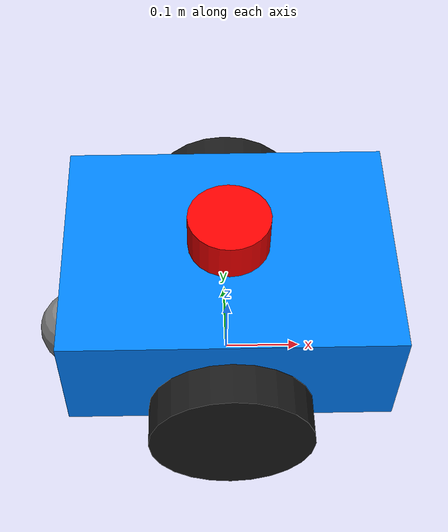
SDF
<?xml version="1.0" ?>
<sdf version="1.8">
  <model name='diff_drive_robot'>

    <link name="base_link"/>

    <joint name="base_link_joint" type="fixed">
      <parent>base_link</parent>
      <child>chassis</child>
    </joint>
    <link name='chassis'>
      <pose>0 0 0.15 0 0 0</pose>
      <inertial>
        <mass>1.14395</mass>
        <inertia>
          <ixx>0.126164</ixx>
          <ixy>0</ixy>
          <ixz>0</ixz>
          <iyy>0.416519</iyy>
          <iyz>0</iyz>
          <izz>0.481014</izz>
        </inertia>
      </inertial>
      <visual name='visual'>
        <geometry>
          <box>
            <size>0.4 0.3 0.15</size>
          </box>
        </geometry>
        <material>
          <ambient>0.0 0.5 1.0 1.0</ambient>
          <diffuse>0.0 0.5 1.0 1.0</diffuse>
        </material>
      </visual>
      <collision name='collision'>
        <geometry>
          <box>
            <size>0.4 0.3 0.15</size>
          </box>
        </geometry>
      </collision>
    </link>

    <link name='left_wheel'>
      <pose>0 0.18 0.1 -1.5707 0 0</pose>
      <inertial>
        <mass>2</mass>
        <inertia>
          <ixx>0.00524052</ixx>
          <ixy>0</ixy>
          <ixz>0</ixz>
          <iyy>0.00524052</iyy>
          <iyz>0</iyz>
          <izz>0.009025</izz>
        </inertia>
      </inertial>
      <visual name='visual'>
        <geometry>
          <cylinder>
            <radius>0.1</radius>
            <length>0.05</length>
          </cylinder>
        </geometry>
        <material>
          <ambient>0.1 0.1 0.1 1.0</ambient>
          <diffuse>0.1 0.1 0.1 1.0</diffuse>
        </material>
      </visual>
      <collision name='collision'>
        <geometry>
          <cylinder>
            <radius>0.1</radius>
            <length>0.05</length>
          </cylinder>
        </geometry>
      </collision>
    </link>

    <link name='right_wheel'>
      <pose>0 -0.18 0.1 -1.5707 0 0</pose>
      <inertial>
        <mass>2</mass>
        <inertia>
          <ixx>0.00524052</ixx>
          <ixy>0</ixy>
          <ixz>0</ixz>
          <iyy>0.00524052</iyy>
          <iyz>0</iyz>
          <izz>0.009025</izz>
        </inertia>
      </inertial>
      <visual name='visual'>
        <geometry>
          <cylinder>
            <radius>0.1</radius>
            <length>0.05</length>
          </cylinder>
        </geometry>
        <material>
          <ambient>0.1 0.1 0.1 1.0</ambient>
          <diffuse>0.1 0.1 0.1 1.0</diffuse>
        </material>
      </visual>
      <collision name='collision'>
        <geometry>
          <cylinder>
            <radius>0.1</radius>
            <length>0.05</length>
          </cylinder>
        </geometry>
      </collision>
    </link>

    <link name='caster'>
      <pose>-0.2 0 0.05 0 0 0</pose>
      <inertial>
        <mass>1</mass>
        <inertia>
          <ixx>0.001</ixx>
          <ixy>0</ixy>
          <ixz>0</ixz>
          <iyy>0.001</iyy>
          <iyz>0</iyz>
          <izz>0.001</izz>
        </inertia>
      </inertial>
      <visual name='visual'>
        <geometry>
          <sphere>
            <radius>0.05</radius>
          </sphere>
        </geometry>
        <material>
          <ambient>0.5 0.5 0.5 1.0</ambient>
          <diffuse>0.5 0.5 0.5 1.0</diffuse>
        </material>
      </visual>
      <collision name='collision'>
        <geometry>
          <sphere>
            <radius>0.05</radius>
          </sphere>
        </geometry>
      </collision>
    </link>

    <link name='lidar_link'>
      <pose>0.0 0 0.25 0 0 0</pose>
      <inertial>
        <mass>0.1</mass>
        <inertia>
          <ixx>0.0001</ixx>
          <ixy>0</ixy>
          <ixz>0</ixz>
          <iyy>0.0001</iyy>
          <iyz>0</iyz>
          <izz>0.0001</izz>
        </inertia>
      </inertial>
      <visual name='visual'>
        <geometry>
          <cylinder>
            <radius>0.05</radius>
            <length>0.05</length>
          </cylinder>
        </geometry>
        <material>
          <ambient>1.0 0.0 0.0 1.0</ambient>
          <diffuse>1.0 0.0 0.0 1.0</diffuse>
        </material>
      </visual>
      <collision name='collision'>
        <geometry>
          <cylinder>
            <radius>0.05</radius>
            <length>0.05</length>
          </cylinder>
        </geometry>
      </collision>
      <sensor name="lidar" type="ray">
        <always_on>true</always_on>
        <visualize>false</visualize>
        <update_rate>10</update_rate>
        <topic>scan</topic>
        <ray>
          <scan>
            <horizontal>
              <samples>360</samples>
              <resolution>1</resolution>
              <min_angle>-3.14</min_angle>
              <max_angle>3.14</max_angle>
            </horizontal>
          </scan>
        </ray>
      </sensor>
    </link>

    <joint name='left_wheel_joint' type='revolute'>
      <parent>chassis</parent>
      <child>left_wheel</child>
      <axis>
        <xyz>0 0 1</xyz>
        <limit>
          <lower>-1.79769e+308</lower>
          <upper>1.79769e+308</upper>
        </limit>
      </axis>
    </joint>

    <joint name='right_wheel_joint' type='revolute'>
      <parent>chassis</parent>
      <child>right_wheel</child>
      <axis>
        <xyz>0 0 1</xyz>
        <limit>
          <lower>-1.79769e+308</lower>
          <upper>1.79769e+308</upper>
        </limit>
      </axis>
    </joint>

    <joint name='caster_joint' type='fixed'>
      <parent>chassis</parent>
      <child>caster</child>
    </joint>

    <joint name='lidar_joint' type='fixed'>
      <parent>chassis</parent>
      <child>lidar_link</child>
    </joint>

    <plugin filename="gz-sim-diff-drive-system" name="gz::sim::systems::DiffDrive">
      <left_joint>left_wheel_joint</left_joint>
      <right_joint>right_wheel_joint</right_joint>
      <wheel_separation>0.36</wheel_separation>
      <wheel_radius>0.1</wheel_radius>

      <frame_id>odom</frame_id>
      <child_frame_id>base_link</child_frame_id>

      <publish_odom>true</publish_odom>
      <publish_odom_tf>true</publish_odom_tf>
      <publish_tf>true</publish_tf>

      <odom_topic>odom</odom_topic>
      <odom_base_frame>base_link</odom_base_frame> <tf_topic>/tf</tf_topic>
    </plugin>

    <plugin filename="gz-sim-joint-state-publisher-system" name="gz::sim::systems::JointStatePublisher">
      <topic>joint_states</topic>
    </plugin>

    <plugin filename="gz-sim-sensors-system" name="gz::sim::systems::Sensors">
      <render_engine>ogre</render_engine>
    </plugin>
  </model>
</sdf>
